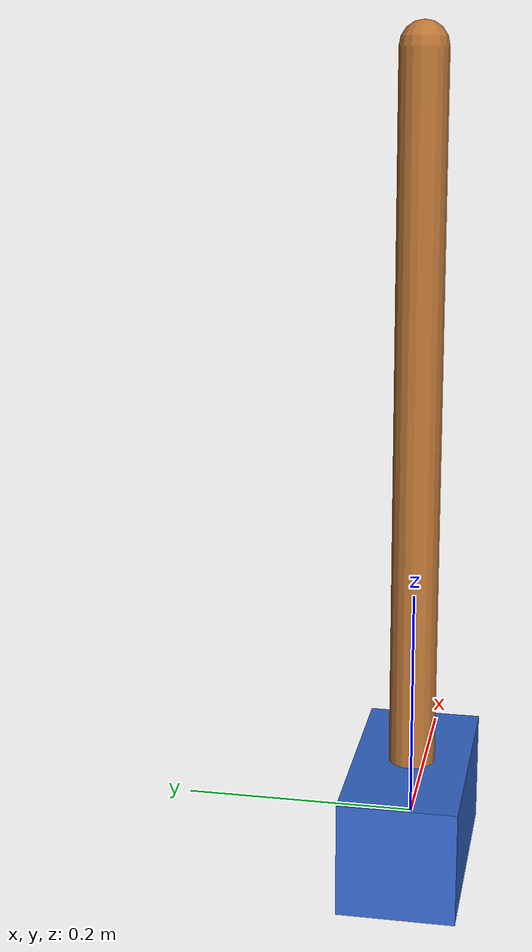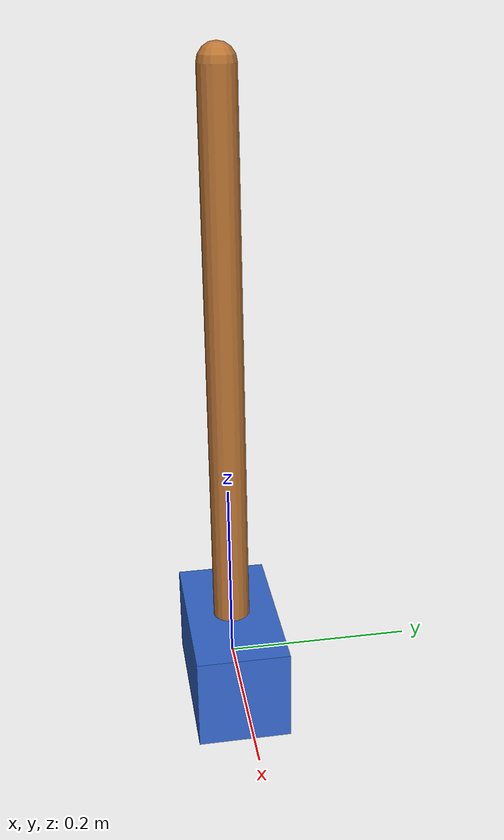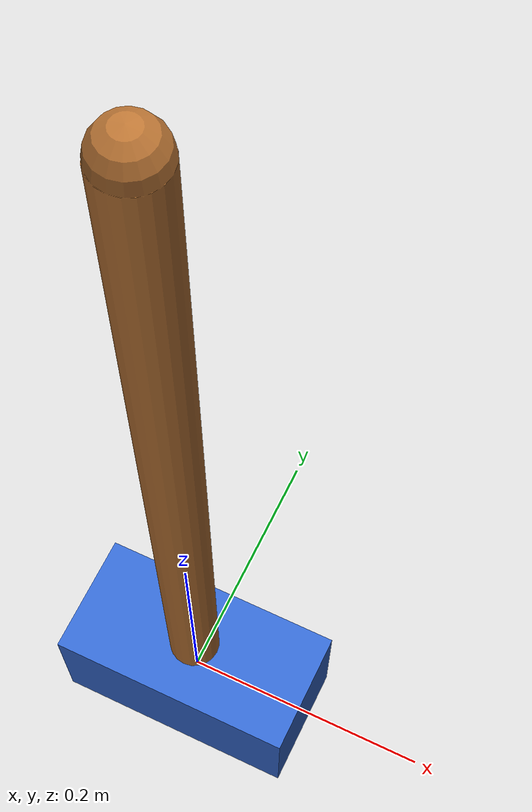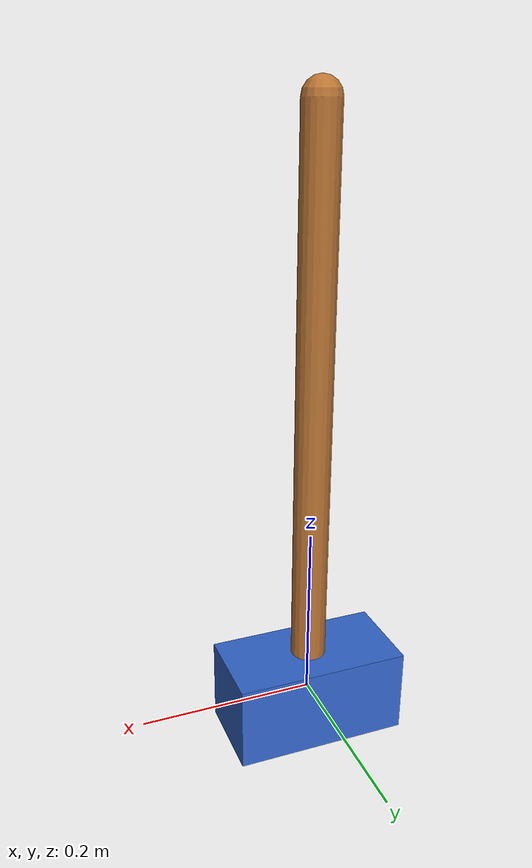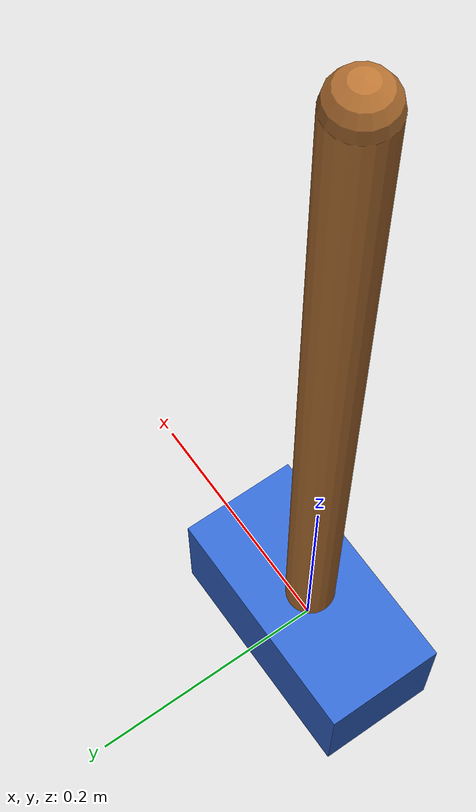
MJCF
<mujoco model="cartpole">
    <compiler autolimits="true"/>
    <default>
        <joint damping="0.05"/>
    </default>
    <worldbody>
        <body name="cart" pos="0 0 0">
            <joint name="slider" type="slide" axis="1 0 0" range="-2.4 2.4"/>
            <geom type="box" size="0.1 0.05 0.05" rgba="0.2 0.4 0.8 1"/>
            <body name="pole" pos="0 0 0.05">
                <joint name="hinge" type="hinge" axis="0 1 0"/>
                <geom type="capsule" fromto="0 0 0 0 0 0.6" size="0.02" rgba="0.72 0.45 0.2 1"/>
            </body>
        </body>
    </worldbody>
    <actuator>
        <motor name="slide" joint="slider" gear="100"/>
    </actuator>
</mujoco>
